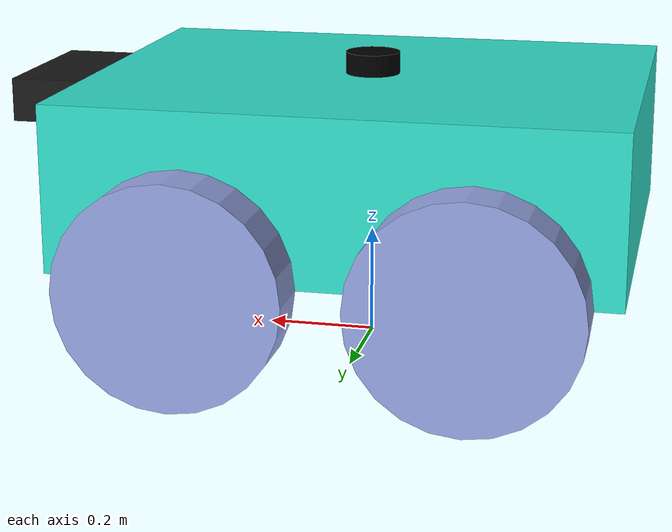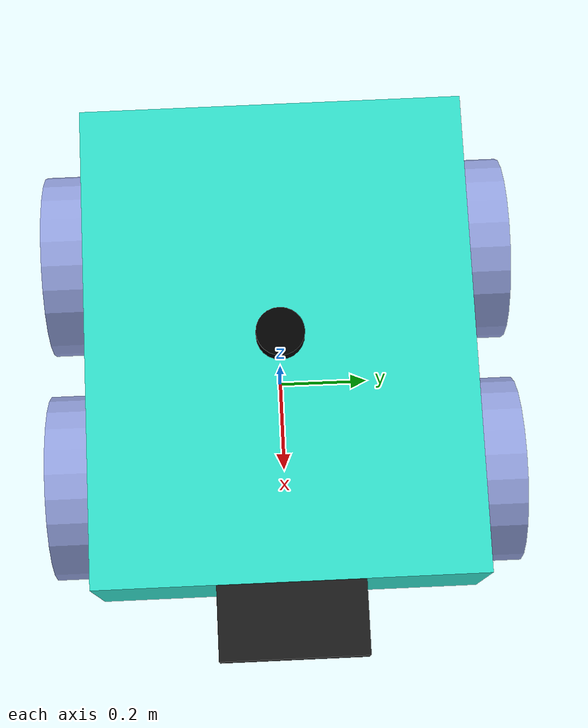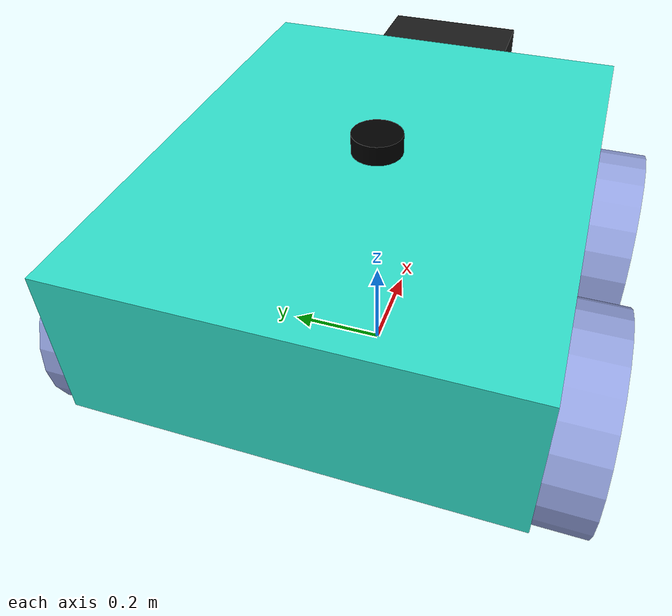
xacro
<?xml version="1.0"?>
<robot xmlns:xacro="http://www.ros.org/wiki/xacro">
    <xacro:property name="car_hight" value="0.3" />
    <xacro:property name="car_width" value="0.8" />
    <xacro:property name="car_length" value="1.0" />
    <xacro:property name="wheel_radius" value="0.2" />
    <xacro:property name="wheel_length" value="0.1" />

    <xacro:macro name="wheel_inertia" params="m r h o_xyz o_rpy">
        <inertial>
            <origin xyz="${o_xyz}" rpy="${o_rpy}"/>
            <mass value="${m}"/>
            <inertia
                ixx="${(1/12)*m*(3*r*r + h*h)}"
                ixy="0.0"
                ixz="0.0"
                iyy="${(1/12)*m*(3*r*r + h*h)}"
                iyz="0.0"
                izz="${(1/2)*m*r*r}" />
        </inertial>
    </xacro:macro>

    <xacro:macro name="box_inertia" params="m x y z o_xyz o_rpy">
        <inertial>
            <origin xyz="${o_xyz}" rpy="${o_rpy}"/>
            <mass value="${m}"/>
            <inertia
                ixx="${(m/12.0)*(y*y + z*z)}"
                ixy="0.0"
                ixz="0.0"
                iyy="${(m/12.0)*(x*x + z*z)}"
                iyz="0.0"
                izz="${(m/12.0)*(x*x + y*y)}" />
        </inertial>
    </xacro:macro>

    <link name="lidar_link">
        <visual>
            <geometry>
                <cylinder radius="0.05" length="0.04"/>
            </geometry>
            <material name="black">
                <color rgba="0 0 0 1"/>
            </material>
        </visual>
        <collision>
            <geometry>
                <cylinder radius="0.05" length="0.04"/>
            </geometry>
        </collision>
        <inertial>
            <mass value="0.1"/>
            <inertia ixx="0.0001" ixy="0" ixz="0" iyy="0.0001" iyz="0" izz="0.0001"/>
        </inertial>
    </link>

    <joint name="lidar_joint" type="fixed">
    <parent link="base_link"/> <child link="lidar_link"/>
    <origin xyz="0 0 ${car_hight/2 + 0.02}" rpy="0 0 0"/> </joint>

    <link name="imu_link">
        <visual>
            <geometry>
                <box size="0.02 0.02 0.02"/>
            </geometry>
            <material name="black"/>
        </visual>
        <collision>
            <geometry>
                <box size="0.02 0.02 0.02"/>
            </geometry>
        </collision>
        <inertial>
            <mass value="0.1"/>
            <inertia ixx="0.0001" ixy="0" ixz="0" iyy="0.0001" iyz="0" izz="0.0001"/>
        </inertial>
    </link>

    <joint name="imu_joint" type="fixed">
        <parent link="base_link"/>
        <child link="imu_link"/>
        <origin xyz="0 0 0.1" rpy="0 0 0"/> \
    </joint>

    <link name="base_footprint" />

    <link name="base_link">
        <visual>
            <geometry>
               <box size="${car_length} ${car_width} ${car_hight}" />
            </geometry>
            <origin xyz="0 0 0" rpy="0 0 0" />
            <material name="blue">
                <color rgba="0.196 0.890 0.808 1"/>
            </material>
        </visual>
         <collision>
            <geometry>
                <box size="${car_length} ${car_width} ${car_hight}" />
            </geometry>
             <origin xyz="0 0 0" rpy="0 0 0" />
        </collision>
        <xacro:box_inertia m="5" x="${car_length}" y="${car_width}"
                           z="${car_hight}" o_xyz="0 0 0" o_rpy="0 0 0" />
    </link>

    <link name="camera_link">
        <visual>
            <geometry>
                <box size="0.15 0.3 0.08"/>
            </geometry>
            <material name="camera_black">
                <color rgba="0.1 0.1 0.1 1"/>
            </material>
        </visual>
        <collision>
            <geometry>
                <box size="0.15 0.3 0.08" />
            </geometry>
             <origin xyz="0 0 0" rpy="0 0 0" />
        </collision>
        <xacro:box_inertia m="0.001" x="0.15" y="0.3"
                           z="0.08" o_xyz="0 0 0" o_rpy="0 0 0" />
    </link>

    <link name="camera_optical_frame"/>
    <link name="camera_depth_optical_frame"/>

    <xacro:macro name="wheel_link" params="prefix">
        <link name="${prefix}_wheel_link">
            <visual>
                <geometry>
                    <cylinder radius="${wheel_radius}" length="${wheel_length}" />
                </geometry>
                <origin xyz="0 0 0" rpy="${pi / 2.0} 0 0" />
                <material name="red">
                    <color rgba="0.588 0.647 0.890 1"/>
                </material>
            </visual>
            <collision>
            <geometry>
                <cylinder radius="${wheel_radius}" length="${wheel_length}" />
            </geometry>
            <origin xyz="0 0 0" rpy="${pi / 2.0} 0 0" />
        </collision>
        <xacro:wheel_inertia m="0.5" r="${wheel_radius}" h="${wheel_length}"
                             o_xyz="0 0 0" o_rpy="${pi / 2.0} 0 0" />
        </link>
    </xacro:macro>

    <xacro:wheel_link prefix="left_front" />
    <xacro:wheel_link prefix="right_front" />
    <xacro:wheel_link prefix="left_rear" />
    <xacro:wheel_link prefix="right_rear" />

    <joint name="base_left_front_wheel_joint" type="continuous">
        <parent link="base_link" />
        <child link="left_front_wheel_link" />
        <origin xyz="${(car_length / 4.0)} ${(car_width + wheel_length) / 2.0} ${-car_hight / 2.0}" rpy="0 0 0" />
        <axis xyz="0 1 0" />
        <effort>600.0</effort>    <!--max siła przylozenia w [N·m] -->
        <velocity>100.0</velocity> <!-- max 100 [rad/s]  -->
    </joint>

    <joint name="base_right_front_wheel_joint" type="continuous">
        <parent link="base_link" />
        <child link="right_front_wheel_link" />
        <origin xyz="${(car_length / 4.0) } ${-(car_width + wheel_length) / 2.0} ${-car_hight / 2.0}" rpy="0 0 0" />
        <axis xyz="0 1 0" />
        <effort>600.0</effort>    <!--max siła przylozenia w [N·m] -->
        <velocity>100.0</velocity> <!-- max 100 [rad/s]  -->
    </joint>

    <joint name="base_left_rear_wheel_joint" type="continuous">
        <parent link="base_link" />
        <child link="left_rear_wheel_link" />
        <origin xyz="${-car_length / 4.0 } ${(car_width + wheel_length) / 2.0} ${-car_hight / 2.0}" rpy="0 0 0" />
        <axis xyz="0 1 0" />
        <effort>600.0</effort>    <!--max siła przylozenia w [N·m] -->
        <velocity>100.0</velocity> <!-- max 100 [rad/s]  -->
    </joint>

    <joint name="base_right_rear_wheel_joint" type="continuous">
        <parent link="base_link" />
        <child link="right_rear_wheel_link" />
        <origin xyz="${-car_length / 4.0 } ${-(car_width + wheel_length) / 2.0} ${-car_hight / 2.0}" rpy="0 0 0" />
        <axis xyz="0 1 0" />
        <effort>600.0</effort>    <!--max siła przylozenia w [N·m] -->
        <velocity>100.0</velocity> <!-- max 100 [rad/s]  -->
    </joint>

    <joint name="base_joint" type="fixed">
        <parent link="base_footprint" />
        <child link="base_link" />
        <origin xyz="0 0 ${wheel_radius + car_hight/2.0}" rpy="0 0 0"/>
    </joint>

      <joint name="camera_joint" type="fixed">
        <parent link="base_link"/>
        <child link="camera_link"/>
        <origin xyz="${(car_length + 0.15)/2} 0 ${car_hight/2 - 0.05}" rpy="0 0 0"/>
    </joint>

    <joint name="camera_optical_joint" type="fixed">
        <parent link="camera_link"/>
        <child link="camera_optical_frame"/>
        <origin xyz="0 0 0" rpy="${-pi/2} 0 ${-pi/2}"/>
    </joint>

    <joint name="camera_depth_optical_joint" type="fixed">
    <parent link="camera_link"/>
    <child link="camera_depth_optical_frame"/>
    <origin xyz="0 0 0" rpy="0 0 0"/>
</joint>

</robot>
